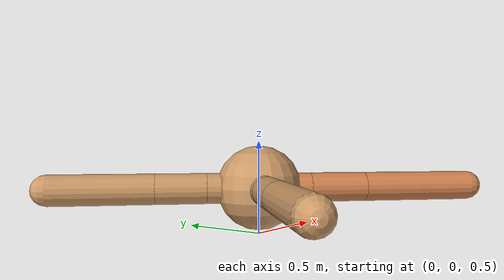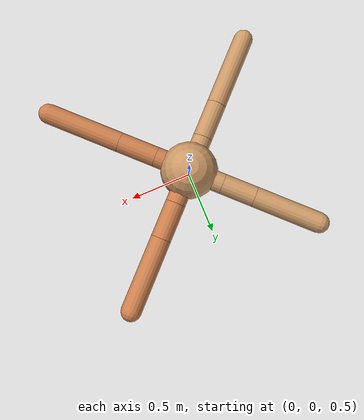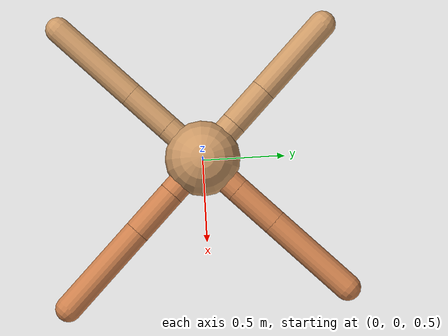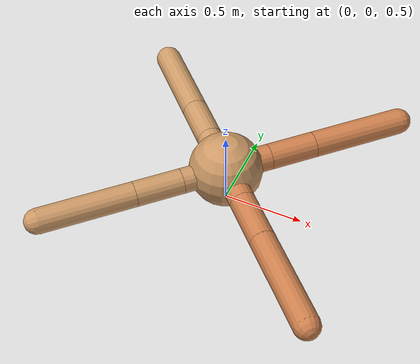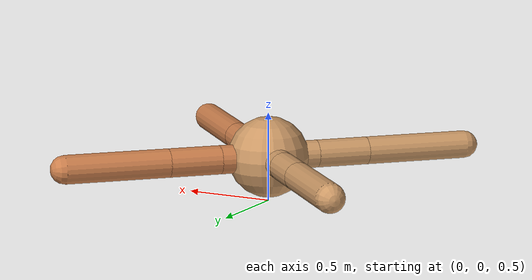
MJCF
<?xml version="1.0" ?>
<mujoco model="ant">

	<compiler angle="degree" coordinate="local" inertiafromgeom="true"/>

	<option integrator="RK4" timestep="0.01"/>

	<custom>

		<numeric data="0.0 0.0 0.55 1.0 0.0 0.0 0.0 0.0 1.0 0.0 -1.0 0.0 -1.0 0.0 1.0" name="init_qpos"/>

	</custom>

	<default>

		<joint armature="1" damping="1" limited="true"/>

		<geom conaffinity="0" condim="3" density="5.0" friction="1.5 0.1 0.1" margin="0.01" rgba="0.8 0.6 0.4 1"/>

	</default>

	<worldbody>

		<body name="torso" pos="0 0 0.75">

			<geom name="torso_geom" pos="0 0 0" size="0.22765491653435202" type="sphere"/>

			<!--joint armature="0" damping="0" limited="false" margin="0.01" name="root" pos="0 0 0" type="free"/-->

			<body name="front_left_leg" pos="0 0 0">

				<geom fromto="0 0 0 0.2 0.2 0" name="aux_1_geom" size="0.0805902263503658" type="capsule" rgba=".8 .5 .3 1"/>

				<body name="aux_1" pos="0.2 0.2 0">

					<joint axis="0 0 1" name="hip_1" pos="0.0 0.0 0.0" range="-40 40" type="hinge"/>

					<geom fromto="0 0 0 0.20812653469359713 0.20812653469359713 0" name="left_leg_geom" size="0.0805902263503658" type="capsule" rgba=".8 .5 .3 1"/>

					<body pos="0.20812653469359713 0.20812653469359713 0" name="front_left_foot">

						<joint axis="-1 1 0" name="ankle_1" pos="0.0 0.0 0.0" range="30 100" type="hinge"/>

						<geom fromto="0 0 0 0.41625306938719425 0.41625306938719425 0" name="left_ankle_geom" size="0.0805902263503658" type="capsule" rgba=".8 .5 .3 1"/>

					</body>

				</body>

			</body>

			<body name="front_right_leg" pos="0 0 0">

				<geom fromto="0 0 0 -0.2 0.2 0" name="aux_2_geom" size="0.08162633081040127" type="capsule"/>

				<body name="aux_2" pos="-0.2 0.2 0">

					<joint axis="0 0 1" name="hip_2" pos="0.0 0.0 0.0" range="-40 40" type="hinge"/>

					<geom fromto="0 0 0 -0.189165784842421 0.189165784842421 0" name="right_leg_geom" size="0.08162633081040127" type="capsule"/>

					<body pos="-0.189165784842421 0.189165784842421 0" name="front_right_foot">

						<joint axis="1 1 0" name="ankle_2" pos="0.0 0.0 0.0" range="-100 -30" type="hinge"/>

						<geom fromto="0 0 0 -0.378331569684842 0.378331569684842 0" name="right_ankle_geom" size="0.08162633081040127" type="capsule"/>

					</body>

				</body>

			</body>

			<body name="left_back_leg" pos="0 0 0">

				<geom fromto="0 0 0 -0.2 -0.2 0" name="aux_3_geom" size="0.0777024786052419" type="capsule"/>

				<body name="aux_3" pos="-0.2 -0.2 0">

					<joint axis="0 0 1" name="hip_3" pos="0.0 0.0 0.0" range="-40 40" type="hinge"/>

					<geom fromto="0 0 0 -0.208464164883161 -0.208464164883161 0" name="back_leg_geom" size="0.0777024786052419" type="capsule"/>

					<body pos="-0.208464164883161 -0.208464164883161 0" name="left_back_foot">

						<joint axis="-1 1 0" name="ankle_3" pos="0.0 0.0 0.0" range="-100 -30" type="hinge"/>

						<geom fromto="0 0 0 -0.416928329766322 -0.416928329766322 0" name="third_ankle_geom" size="0.0777024786052419" type="capsule"/>

					</body>

				</body>

			</body>

			<body name="right_back_leg" pos="0 0 0">

				<geom fromto="0 0 0 0.2 -0.2 0" name="aux_4_geom" size="0.08033478526329171" type="capsule" rgba=".8 .5 .3 1"/>

				<body name="aux_4" pos="0.2 -0.2 0">

					<joint axis="0 0 1" name="hip_4" pos="0.0 0.0 0.0" range="-40 40" type="hinge"/>

					<geom fromto="0 0 0 0.21853534091721843 -0.21853534091721843 0" name="rightback_leg_geom" size="0.08033478526329171" type="capsule" rgba=".8 .5 .3 1"/>

					<body pos="0.21853534091721843 -0.21853534091721843 0" name="right_back_foot">

						<joint axis="1 1 0" name="ankle_4" pos="0.0 0.0 0.0" range="30 100" type="hinge"/>

						<geom fromto="0 0 0 0.43707068183443687 -0.43707068183443687 0" name="fourth_ankle_geom" size="0.08033478526329171" type="capsule" rgba=".8 .5 .3 1"/>

					</body>

				</body>

			</body>

		</body>

	</worldbody>

	<actuator>

		<motor ctrllimited="true" ctrlrange="-1.0 1.0" joint="hip_4" gear="150"/>

		<motor ctrllimited="true" ctrlrange="-1.0 1.0" joint="ankle_4" gear="150"/>

		<motor ctrllimited="true" ctrlrange="-1.0 1.0" joint="hip_1" gear="150"/>

		<motor ctrllimited="true" ctrlrange="-1.0 1.0" joint="ankle_1" gear="150"/>

		<motor ctrllimited="true" ctrlrange="-1.0 1.0" joint="hip_2" gear="150"/>

		<motor ctrllimited="true" ctrlrange="-1.0 1.0" joint="ankle_2" gear="150"/>

		<motor ctrllimited="true" ctrlrange="-1.0 1.0" joint="hip_3" gear="150"/>

		<motor ctrllimited="true" ctrlrange="-1.0 1.0" joint="ankle_3" gear="150"/>

	</actuator>

</mujoco>
